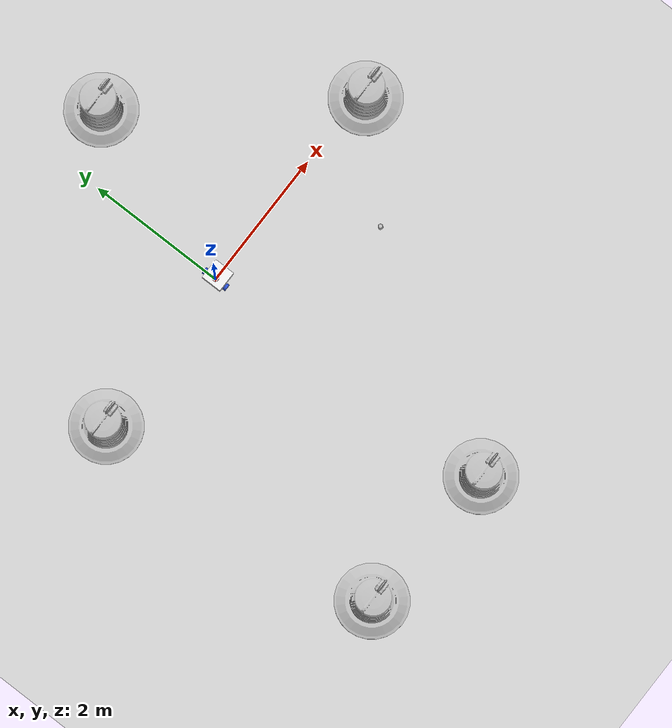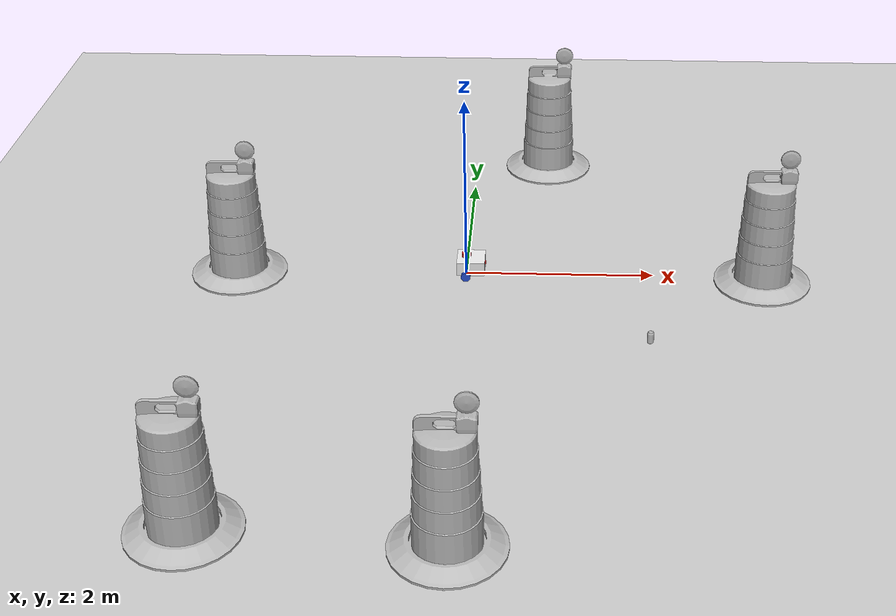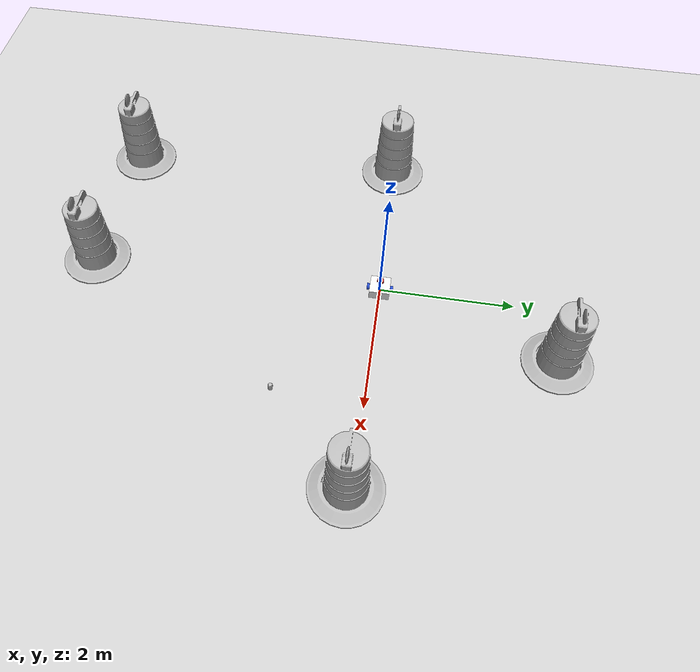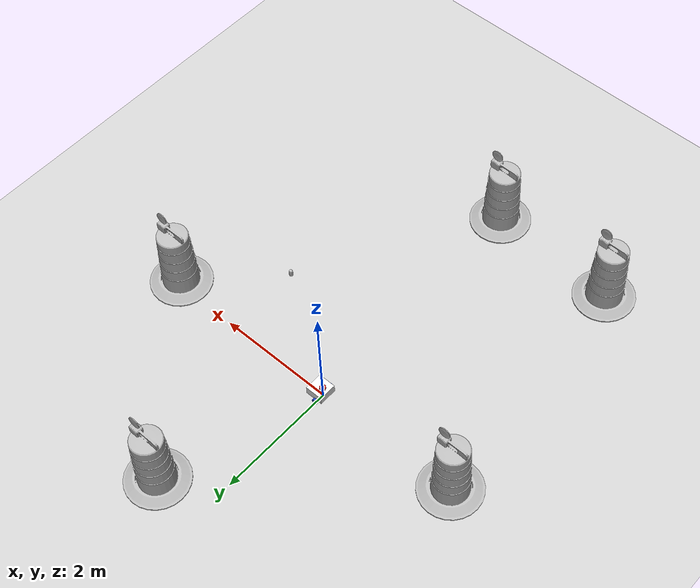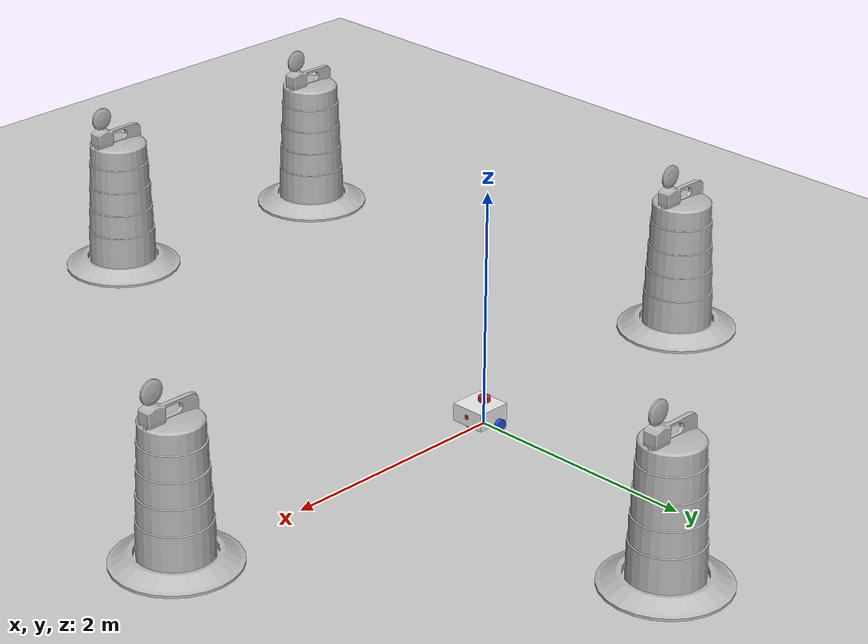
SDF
<sdf version="1.7">
 <world name="default">
  <light name="sun" type="directional">
   <pose>0 0 10 0 -0 0</pose>
   <diffuse>0.8 0.8 0.8 1</diffuse>
   <specular>0.2 0.2 0.2 1</specular>
   <attenuation>
    <range>1000</range>
    <constant>0.9</constant>
    <linear>0.01</linear>
    <quadratic>0.001</quadratic>
   </attenuation>
   <direction>-0.5 0.1 -0.9</direction>
   <spot><inner_angle>0</inner_angle><outer_angle>0</outer_angle><falloff>0</falloff></spot>
  </light>
  <model name="ground_plane">
   <static>1</static>
   <link name="link">
    <collision name="collision">
     <geometry><plane><normal>0 0 1</normal><size>100 100</size></plane></geometry>
     <surface>
      <contact><collide_bitmask>65535</collide_bitmask></contact>
      <friction><ode><mu>100</mu><mu2>50</mu2></ode></friction>
     </surface>
    </collision>
    <visual name="visual">
     <cast_shadows>0</cast_shadows>
     <geometry><plane><normal>0 0 1</normal><size>100 100</size></plane></geometry>
     <material>
      <script><uri>file://media/materials/scripts/gazebo.material</uri><name>Gazebo/Grey</name></script>
     </material>
    </visual>
   </link>
  </model>
  <gravity>0 0 -9.8</gravity>
  <magnetic_field>6e-06 2.3e-05 -4.2e-05</magnetic_field>
  <atmosphere type="adiabatic"/>
  <physics type="ode">
   <max_step_size>0.001</max_step_size>
   <real_time_factor>1</real_time_factor>
   <real_time_update_rate>1000</real_time_update_rate>
  </physics>
  <scene><ambient>0.4 0.4 0.4 1</ambient><background>0.7 0.7 0.7 1</background><shadows>1</shadows></scene>
  <audio><device>default</device></audio>
  <spherical_coordinates>
   <surface_model>EARTH_WGS84</surface_model>
   <latitude_deg>0</latitude_deg>
   <longitude_deg>0</longitude_deg>
   <elevation>0</elevation>
   <heading_deg>0</heading_deg>
  </spherical_coordinates>
  <model name="bot_name">
   <link name="base_link">
    <inertial>
     <pose>0.055714 0 0.078571 0 -0 0</pose>
     <mass>0.7</mass>
     <inertia>
      <ixx>0.0064169</ixx>
      <ixy>0</ixy>
      <ixz>0.00118929</ixz>
      <iyy>0.00745405</iyy>
      <iyz>0</iyz>
      <izz>0.00876214</izz>
     </inertia>
    </inertial>
    <collision name="base_link_fixed_joint_lump__chassis_collision">
     <pose>0.05 0 0.075 0 -0 0</pose>
     <geometry><box><size>0.3 0.3 0.15</size></box></geometry>
    </collision>
    <collision name="base_link_fixed_joint_lump__caster_wheel_collision_1">
     <pose>0.14 0 0 0 -0 0</pose>
     <geometry><sphere><radius>0.05</radius></sphere></geometry>
     <surface><friction><ode><mu>0.001</mu><mu2>0.001</mu2></ode></friction></surface>
    </collision>
    <collision name="base_link_fixed_joint_lump__laser_frame_collision_2">
     <pose>0 0 0.175 0 -0 0</pose>
     <geometry><cylinder><length>0.04</length><radius>0.05</radius></cylinder></geometry>
    </collision>
    <visual name="base_link_fixed_joint_lump__chassis_visual">
     <pose>0.05 0 0.075 0 -0 0</pose>
     <geometry><box><size>0.3 0.3 0.15</size></box></geometry>
     <material>
      <script><name>Gazebo/White</name><uri>file://media/materials/scripts/gazebo.material</uri></script>
     </material>
    </visual>
    <visual name="base_link_fixed_joint_lump__camera_link_visual_1">
     <pose>0.205 0 0.08 0 -0 0</pose>
     <geometry><box><size>0.01 0.03 0.03</size></box></geometry>
     <material>
      <script><name>Gazebo/Red</name><uri>file://media/materials/scripts/gazebo.material</uri></script>
     </material>
    </visual>
    <visual name="base_link_fixed_joint_lump__caster_wheel_visual_2">
     <pose>0.14 0 0 0 -0 0</pose>
     <geometry><sphere><radius>0.05</radius></sphere></geometry>
     <material>
      <script><name>Gazebo/Black</name><uri>file://media/materials/scripts/gazebo.material</uri></script>
     </material>
    </visual>
    <visual name="base_link_fixed_joint_lump__laser_frame_visual_3">
     <pose>0 0 0.175 0 -0 0</pose>
     <geometry><cylinder><length>0.04</length><radius>0.05</radius></cylinder></geometry>
     <material>
      <script><name>Gazebo/Red</name><uri>file://media/materials/scripts/gazebo.material</uri></script>
     </material>
    </visual>
    <sensor name="camera" type="camera">
     <visualize>1</visualize>
     <update_rate>10</update_rate>
     <camera>
      <horizontal_fov>1.089</horizontal_fov>
      <image><format>R8G8B8</format><width>640</width><height>480</height></image>
      <clip><near>0.05</near><far>8</far></clip>
     </camera>
     <plugin name="camera_controller" filename="libgazebo_ros_camera.so">
      <frame_name>camera_link_optical</frame_name>
     </plugin>
     <pose>0.205 0 0.08 0 -0 0</pose>
    </sensor>
    <sensor name="laser" type="ray">
     <visualize>1</visualize>
     <update_rate>10</update_rate>
     <ray>
      <scan>
       <horizontal>
        <samples>360</samples>
        <min_angle>-3.14</min_angle>
        <max_angle>3.14</max_angle>
        <resolution>1</resolution>
       </horizontal>
       <vertical><samples>1</samples><min_angle>0</min_angle><max_angle>0</max_angle></vertical>
      </scan>
      <range><min>0.3</min><max>12</max></range>
     </ray>
     <plugin name="laser_controller" filename="libgazebo_ros_ray_sensor.so">
      <ros><argument>~/out:=scan</argument></ros>
      <output_type>sensor_msgs/LaserScan</output_type>
      <frame_name>laser_frame</frame_name>
     </plugin>
     <pose>0 0 0.175 0 -0 0</pose>
    </sensor>
   </link>
   <joint name="left_wheel_joint" type="revolute">
    <pose relative_to="base_link">0 0.175 0 -1.5708 0 0</pose>
    <parent>base_link</parent>
    <child>left_wheel</child>
    <axis>
     <xyz>0 0 1</xyz>
     <limit><lower>-1e+16</lower><upper>1e+16</upper></limit>
     <dynamics><spring_reference>0</spring_reference><spring_stiffness>0</spring_stiffness></dynamics>
    </axis>
   </joint>
   <link name="left_wheel">
    <pose relative_to="left_wheel_joint">0 0 0 0 -0 0</pose>
    <inertial>
     <mass>0.1</mass>
     <inertia>
      <ixx>7.58333e-05</ixx>
      <ixy>0</ixy>
      <ixz>0</ixz>
      <iyy>7.58333e-05</iyy>
      <iyz>0</iyz>
      <izz>0.000125</izz>
     </inertia>
    </inertial>
    <collision name="left_wheel_collision">
     <geometry><cylinder><length>0.04</length><radius>0.05</radius></cylinder></geometry>
    </collision>
    <visual name="left_wheel_visual">
     <geometry><cylinder><length>0.04</length><radius>0.05</radius></cylinder></geometry>
     <material>
      <script><name>Gazebo/Blue</name><uri>file://media/materials/scripts/gazebo.material</uri></script>
     </material>
    </visual>
   </link>
   <joint name="right_wheel_joint" type="revolute">
    <pose relative_to="base_link">0 -0.175 0 1.5708 -0 0</pose>
    <parent>base_link</parent>
    <child>right_wheel</child>
    <axis>
     <xyz>0 0 -1</xyz>
     <limit><lower>-1e+16</lower><upper>1e+16</upper></limit>
     <dynamics><spring_reference>0</spring_reference><spring_stiffness>0</spring_stiffness></dynamics>
    </axis>
   </joint>
   <link name="right_wheel">
    <pose relative_to="right_wheel_joint">0 0 0 0 -0 0</pose>
    <inertial>
     <mass>0.1</mass>
     <inertia>
      <ixx>7.58333e-05</ixx>
      <ixy>0</ixy>
      <ixz>0</ixz>
      <iyy>7.58333e-05</iyy>
      <iyz>0</iyz>
      <izz>0.000125</izz>
     </inertia>
    </inertial>
    <collision name="right_wheel_collision">
     <geometry><cylinder><length>0.04</length><radius>0.05</radius></cylinder></geometry>
    </collision>
    <visual name="right_wheel_visual">
     <geometry><cylinder><length>0.04</length><radius>0.05</radius></cylinder></geometry>
     <material>
      <script><name>Gazebo/Blue</name><uri>file://media/materials/scripts/gazebo.material</uri></script>
     </material>
    </visual>
   </link>
   <static>0</static>
   <plugin name="gazebo_ros2_control" filename="libgazebo_ros2_control.so">
    <parameters>/home/mjrrobotics/dev_ws/install/mjrbot/share/mjrbot/config/my_controllers.yaml</parameters>
   </plugin>
   <pose>0.000905 1.3e-05 0.050001 0 5e-06 0.000558</pose>
  </model>
  <model name="Construction Barrel">
   <link name="link">
    <inertial>
     <pose>0 0 0.4 0 -0 0</pose>
     <mass>500</mass>
     <inertia><ixx>51.2096</ixx><iyy>51.2096</iyy><izz>25</izz><ixy>0</ixy><ixz>0</ixz><iyz>0</iyz></inertia>
    </inertial>
    <collision name="collision">
     <geometry><mesh><uri>model://construction_barrel/meshes/construction_barrel.dae</uri></mesh></geometry>
    </collision>
    <visual name="visual">
     <geometry><mesh><uri>model://construction_barrel/meshes/construction_barrel.dae</uri></mesh></geometry>
    </visual>
   </link>
   <pose>3.15753 -0.08262 -1e-06 0 5e-06 -1e-05</pose>
  </model>
  <model name="Construction Barrel_0">
   <link name="link">
    <inertial>
     <pose>0 0 0.4 0 -0 0</pose>
     <mass>500</mass>
     <inertia><ixx>51.2096</ixx><iyy>51.2096</iyy><izz>25</izz><ixy>0</ixy><ixz>0</ixz><iyz>0</iyz></inertia>
    </inertial>
    <collision name="collision">
     <geometry><mesh><uri>model://construction_barrel/meshes/construction_barrel.dae</uri></mesh></geometry>
    </collision>
    <visual name="visual">
     <geometry><mesh><uri>model://construction_barrel/meshes/construction_barrel.dae</uri></mesh></geometry>
    </visual>
   </link>
   <pose>0.86048 2.61612 -2e-06 -0 7e-06 -8e-06</pose>
  </model>
  <model name="Construction Barrel_1">
   <link name="link">
    <inertial>
     <pose>0 0 0.4 0 -0 0</pose>
     <mass>500</mass>
     <inertia><ixx>51.2096</ixx><iyy>51.2096</iyy><izz>25</izz><ixy>0</ixy><ixz>0</ixz><iyz>0</iyz></inertia>
    </inertial>
    <collision name="collision">
     <geometry><mesh><uri>model://construction_barrel/meshes/construction_barrel.dae</uri></mesh></geometry>
    </collision>
    <visual name="visual">
     <geometry><mesh><uri>model://construction_barrel/meshes/construction_barrel.dae</uri></mesh></geometry>
    </visual>
   </link>
   <pose>-2.44694 -0.058732 -1e-06 3e-06 1e-05 -7e-06</pose>
  </model>
  <model name="Construction Barrel_2">
   <link name="link">
    <inertial>
     <pose>0 0 0.4 0 -0 0</pose>
     <mass>500</mass>
     <inertia><ixx>51.2096</ixx><iyy>51.2096</iyy><izz>25</izz><ixy>0</ixy><ixz>0</ixz><iyz>0</iyz></inertia>
    </inertial>
    <collision name="collision">
     <geometry><mesh><uri>model://construction_barrel/meshes/construction_barrel.dae</uri></mesh></geometry>
    </collision>
    <visual name="visual">
     <geometry><mesh><uri>model://construction_barrel/meshes/construction_barrel.dae</uri></mesh></geometry>
    </visual>
   </link>
   <pose>-2.1106 -4.27667 1e-06 2e-06 3e-06 -6e-06</pose>
  </model>
  <model name="coke_can">
   <link name="link">
    <inertial>
     <pose>0 0 0.06 0 -0 0</pose>
     <mass>0.39</mass>
     <inertia>
      <ixx>0.00055575</ixx>
      <ixy>0</ixy>
      <ixz>0</ixz>
      <iyy>0.00055575</iyy>
      <iyz>0</iyz>
      <izz>0.0001755</izz>
     </inertia>
    </inertial>
    <collision name="collision">
     <pose>0.003937 0.004724 -0.18 0 -0 0</pose>
     <geometry><mesh><uri>model://coke_can/meshes/coke_can.dae</uri></mesh></geometry>
     <surface>
      <friction><ode><mu>1</mu><mu2>1</mu2></ode></friction>
      <contact><ode><kp>1e+07</kp><kd>1</kd><min_depth>0.001</min_depth><max_vel>0.1</max_vel></ode></contact>
     </surface>
    </collision>
    <visual name="visual">
     <pose>0.003937 0.004724 -0.18 0 -0 0</pose>
     <geometry><mesh><uri>model://coke_can/meshes/coke_can.dae</uri></mesh></geometry>
    </visual>
   </link>
   <pose>1.90732 -1.30973 -0.002689 -0.056829 0.006551 -0.000501</pose>
  </model>
  <model name="Construction Barrel_3">
   <link name="link">
    <inertial>
     <pose>0 0 0.4 0 -0 0</pose>
     <mass>500</mass>
     <inertia><ixx>51.2096</ixx><iyy>51.2096</iyy><izz>25</izz><ixy>0</ixy><ixz>0</ixz><iyz>0</iyz></inertia>
    </inertial>
    <collision name="collision">
     <geometry><mesh><uri>model://construction_barrel/meshes/construction_barrel.dae</uri></mesh></geometry>
    </collision>
    <visual name="visual">
     <geometry><mesh><uri>model://construction_barrel/meshes/construction_barrel.dae</uri></mesh></geometry>
    </visual>
   </link>
   <pose>0.089425 -4.40611 -1e-06 3e-06 -2e-06 -2e-06</pose>
  </model>
 </world>
</sdf>
